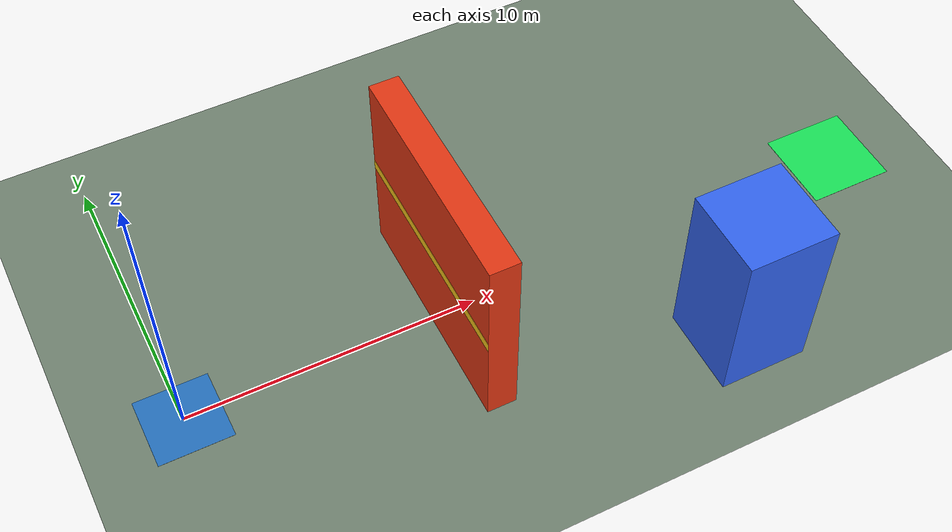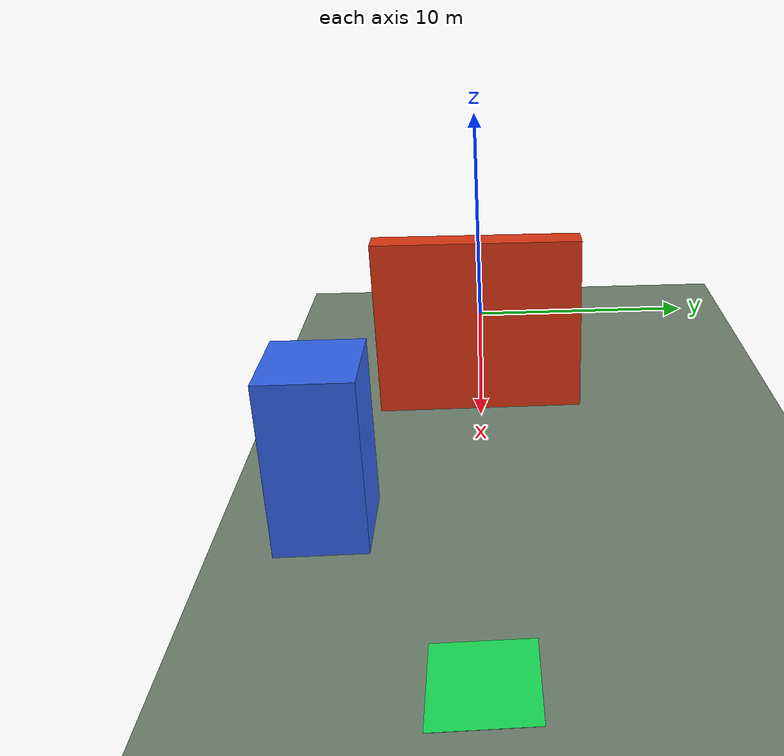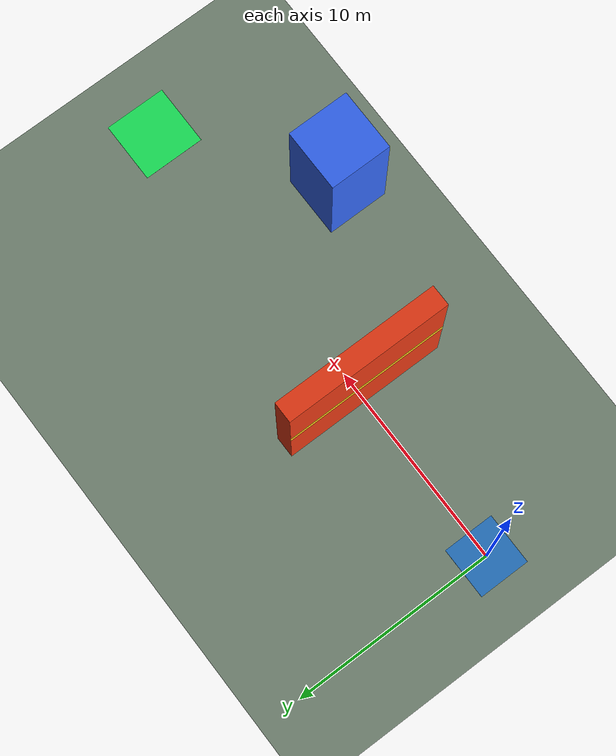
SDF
<?xml version="1.0" encoding="UTF-8"?>
<sdf version="1.9">
  <world name="obstacle_yolo">
    <physics name="physics" type="ode">
      <max_step_size>0.004</max_step_size>
      <real_time_factor>1.0</real_time_factor>
      <real_time_update_rate>250</real_time_update_rate>
    </physics>
    <gravity>0 0 -9.8</gravity>
    <magnetic_field>6e-06 2.3e-05 -4.2e-05</magnetic_field>
    <atmosphere type="adiabatic"/>
    <scene>
      <grid>true</grid><ambient>0.6 0.6 0.6 1</ambient>
      <background>0.65 0.80 0.95 1</background><shadows>true</shadows>
    </scene>
    <light name="sun" type="directional">
      <pose>0 0 100 0 0 0</pose><cast_shadows>true</cast_shadows>
      <diffuse>0.9 0.9 0.9 1</diffuse><specular>0.2 0.2 0.2 1</specular>
      <direction>-0.3 0.3 -0.9</direction>
      <attenuation><range>1000</range><constant>1</constant><linear>0</linear><quadratic>0</quadratic></attenuation>
    </light>
    <spherical_coordinates>
      <surface_model>EARTH_WGS84</surface_model><world_frame_orientation>ENU</world_frame_orientation>
      <latitude_deg>47.397971057728974</latitude_deg><longitude_deg>8.546163739800146</longitude_deg>
      <elevation>0</elevation>
    </spherical_coordinates>

    <!-- Standard Gazebo free camera. It never tracks or changes the drone. -->
    <gui fullscreen="0">
        <!-- The normal interactive 3D viewer is controlled by the mouse. -->
      <plugin filename="MinimalScene" name="3D View">
        <gz-gui><title>3D View</title><property type="bool" key="showTitleBar">false</property><property type="string" key="state">docked</property></gz-gui>
        <engine>ogre2</engine><scene>scene</scene>
        <ambient_light>0.4 0.4 0.4</ambient_light><background_color>0.8 0.8 0.8</background_color>
      </plugin>
      <plugin filename="EntityContextMenuPlugin" name="Entity context menu"><gz-gui><property key="state" type="string">floating</property><property key="width" type="double">5</property><property key="height" type="double">5</property><property key="showTitleBar" type="bool">false</property></gz-gui></plugin>
      <plugin filename="GzSceneManager" name="Scene Manager"><gz-gui><property key="state" type="string">floating</property><property key="width" type="double">5</property><property key="height" type="double">5</property><property key="showTitleBar" type="bool">false</property></gz-gui></plugin>
      <plugin filename="InteractiveViewControl" name="Interactive view control"><gz-gui><property key="state" type="string">floating</property><property key="width" type="double">5</property><property key="height" type="double">5</property><property key="showTitleBar" type="bool">false</property></gz-gui></plugin>
      <plugin filename="SelectEntities" name="Select Entities"><gz-gui><property key="state" type="string">floating</property><property key="width" type="double">5</property><property key="height" type="double">5</property><property key="showTitleBar" type="bool">false</property></gz-gui></plugin>
    </gui>

    <!-- Local geometry only: this world requires no Fuel downloads. -->
    <model name="ground_plane">
      <static>true</static>
      <link name="link">
        <collision name="ground_collision"><geometry><plane><normal>0 0 1</normal><size>100 100</size></plane></geometry></collision>
        <visual name="ground_visual">
          <geometry><plane><normal>0 0 1</normal><size>100 100</size></plane></geometry>
          <material><ambient>0.32 0.38 0.32 1</ambient><diffuse>0.45 0.52 0.45 1</diffuse></material>
        </visual>
      </link>
    </model>
    <model name="takeoff_pad">
      <static>true</static><pose>0 0 0.003 0 0 0</pose>
      <link name="link">
        <visual name="pad"><geometry><box><size>2.5 2.5 0.005</size></box></geometry><material><ambient>0.15 0.45 0.75 1</ambient><diffuse>0.15 0.45 0.75 1</diffuse></material></visual>
        <visual name="arrow"><pose>0.5 0 0.005 0 0 0</pose><geometry><box><size>0.8 0.15 0.005</size></box></geometry><material><ambient>1 1 1 1</ambient><diffuse>1 1 1 1</diffuse></material></visual>
      </link>
    </model>
    <!-- First wall: near face X=8.5, lateral edges Y=+-4, top Z=7. -->
    <model name="front_wall">
      <static>true</static><pose>9 0 3.5 0 0 0</pose>
      <link name="link">
        <collision name="wall_collision"><geometry><box><size>1 8 7</size></box></geometry></collision>
        <visual name="wall_visual"><geometry><box><size>1 8 7</size></box></geometry><material><ambient>0.8 0.18 0.08 1</ambient><diffuse>0.9 0.22 0.08 1</diffuse></material></visual>
        <visual name="stripe"><pose>-0.505 0 0 0 0 0</pose><geometry><box><size>0.01 8 0.35</size></box></geometry><material><ambient>1 0.8 0.1 1</ambient><diffuse>1 0.8 0.1 1</diffuse></material></visual>
      </link>
    </model>
    <model name="second_obstacle">
      <static>true</static><pose>17 -5 3 0 0 0</pose>
      <link name="link">
        <collision name="obstacle_collision"><geometry><box><size>3 3 6</size></box></geometry></collision>
        <visual name="obstacle_visual"><geometry><box><size>3 3 6</size></box></geometry><material><ambient>0.15 0.3 0.85 1</ambient><diffuse>0.2 0.4 0.95 1</diffuse></material></visual>
      </link>
    </model>
    <model name="finish_pad">
      <static>true</static><pose>24 0 0.004 0 0 0</pose>
      <link name="link"><visual name="visual"><geometry><box><size>3 3 0.006</size></box></geometry><material><ambient>0.1 0.9 0.35 1</ambient><diffuse>0.1 0.9 0.35 1</diffuse></material></visual></link>
    </model>

    <plugin filename="gz-sim-physics-system" name="gz::sim::systems::Physics"/>
    <plugin filename="gz-sim-user-commands-system" name="gz::sim::systems::UserCommands"/>
    <plugin filename="gz-sim-scene-broadcaster-system" name="gz::sim::systems::SceneBroadcaster"/>
    <plugin filename="gz-sim-sensors-system" name="gz::sim::systems::Sensors"><render_engine>ogre2</render_engine></plugin>
    <plugin filename="gz-sim-imu-system" name="gz::sim::systems::Imu"/>
    <plugin filename="gz-sim-air-pressure-system" name="gz::sim::systems::AirPressure"/>
    <plugin filename="gz-sim-navsat-system" name="gz::sim::systems::NavSat"/>
    <plugin filename="gz-sim-magnetometer-system" name="gz::sim::systems::Magnetometer"/>
    <plugin filename="gz-sim-contact-system" name="gz::sim::systems::Contact"/>
    <plugin filename="gz-sim-air-speed-system" name="gz::sim::systems::AirSpeed"/>
    <plugin filename="gz-sim-apply-link-wrench-system" name="gz::sim::systems::ApplyLinkWrench"/>
  </world>
</sdf>
